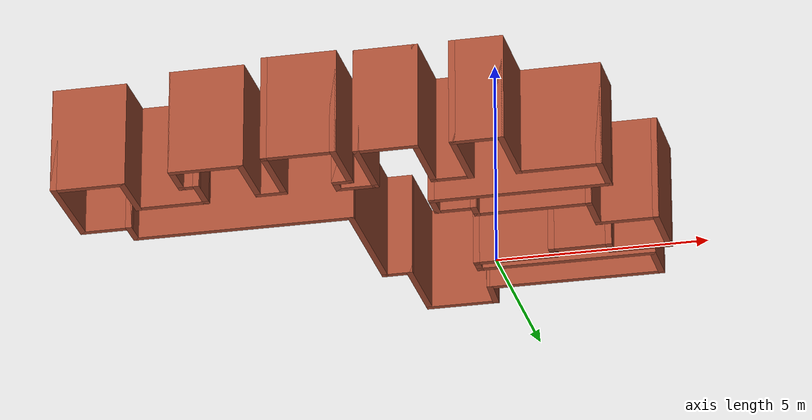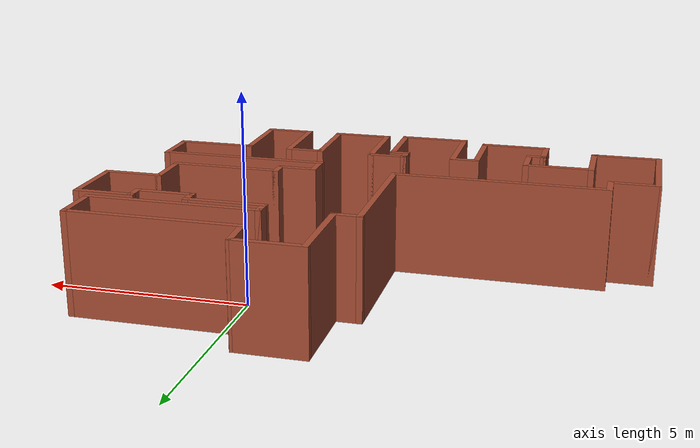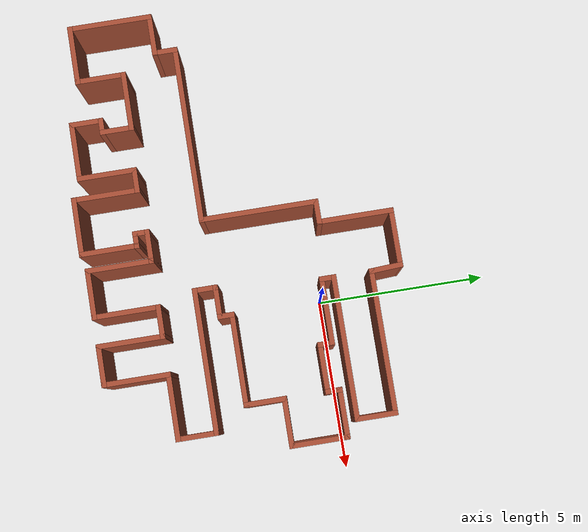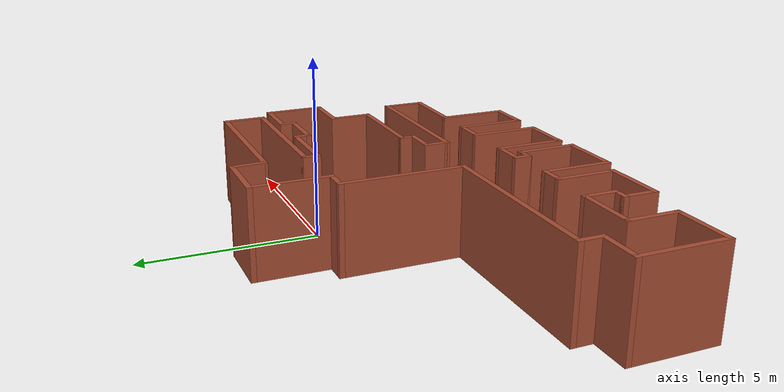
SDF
<?xml version='1.0'?>
<sdf version='1.6'>
  <model name='map_65'>
    <pose frame=''>-2.43226 -2.10203 0 0 -0 0</pose>
    <link name='Wall_0'>
      <collision name='Wall_0_Collision'>
        <geometry>
          <box>
            <size>1.75 0.15 2.5</size>
          </box>
        </geometry>
        <pose frame=''>0 0 1.25 0 -0 0</pose>
      </collision>
      <visual name='Wall_0_Visual'>
        <pose frame=''>0 0 1.25 0 -0 0</pose>
        <geometry>
          <box>
            <size>1.75 0.15 2.5</size>
          </box>
        </geometry>
        <material>
          <script>
            <uri>file://media/materials/scripts/gazebo.material</uri>
            <name>Gazebo/Bricks</name>
          </script>
          <ambient>1 1 1 1</ambient>
        </material>
        <meta>
          <layer>0</layer>
        </meta>
      </visual>
      <pose frame=''>1.1 4.49786 0 0 -0 3.14159</pose>
    </link>
    <link name='Wall_1'>
      <collision name='Wall_1_Collision'>
        <geometry>
          <box>
            <size>2.25 0.15 2.5</size>
          </box>
        </geometry>
        <pose frame=''>0 0 1.25 0 -0 0</pose>
      </collision>
      <visual name='Wall_1_Visual'>
        <pose frame=''>0 0 1.25 0 -0 0</pose>
        <geometry>
          <box>
            <size>2.25 0.15 2.5</size>
          </box>
        </geometry>
        <material>
          <script>
            <uri>file://media/materials/scripts/gazebo.material</uri>
            <name>Gazebo/Bricks</name>
          </script>
          <ambient>1 1 1 1</ambient>
        </material>
        <meta>
          <layer>0</layer>
        </meta>
      </visual>
      <pose frame=''>0.3 3.44786 0 0 -0 -1.5708</pose>
    </link>
    <link name='Wall_10'>
      <collision name='Wall_10_Collision'>
        <geometry>
          <box>
            <size>1.75 0.15 2.5</size>
          </box>
        </geometry>
        <pose frame=''>0 0 1.25 0 -0 0</pose>
      </collision>
      <visual name='Wall_10_Visual'>
        <pose frame=''>0 0 1.25 0 -0 0</pose>
        <geometry>
          <box>
            <size>1.75 0.15 2.5</size>
          </box>
        </geometry>
        <material>
          <script>
            <uri>file://media/materials/scripts/gazebo.material</uri>
            <name>Gazebo/Bricks</name>
          </script>
          <ambient>1 1 1 1</ambient>
        </material>
        <meta>
          <layer>0</layer>
        </meta>
      </visual>
      <pose frame=''>-5.7 -3.90214 0 0 -0 0</pose>
    </link>
    <link name='Wall_11'>
      <collision name='Wall_11_Collision'>
        <geometry>
          <box>
            <size>1.5 0.15 2.5</size>
          </box>
        </geometry>
        <pose frame=''>0 0 1.25 0 -0 0</pose>
      </collision>
      <visual name='Wall_11_Visual'>
        <pose frame=''>0 0 1.25 0 -0 0</pose>
        <geometry>
          <box>
            <size>1.5 0.15 2.5</size>
          </box>
        </geometry>
        <material>
          <script>
            <uri>file://media/materials/scripts/gazebo.material</uri>
            <name>Gazebo/Bricks</name>
          </script>
          <ambient>1 1 1 1</ambient>
        </material>
        <meta>
          <layer>0</layer>
        </meta>
      </visual>
      <pose frame=''>-4.9 -3.22714 0 0 -0 1.5708</pose>
    </link>
    <link name='Wall_12'>
      <collision name='Wall_12_Collision'>
        <geometry>
          <box>
            <size>1.75 0.15 2.5</size>
          </box>
        </geometry>
        <pose frame=''>0 0 1.25 0 -0 0</pose>
      </collision>
      <visual name='Wall_12_Visual'>
        <pose frame=''>0 0 1.25 0 -0 0</pose>
        <geometry>
          <box>
            <size>1.75 0.15 2.5</size>
          </box>
        </geometry>
        <material>
          <script>
            <uri>file://media/materials/scripts/gazebo.material</uri>
            <name>Gazebo/Bricks</name>
          </script>
          <ambient>1 1 1 1</ambient>
        </material>
        <meta>
          <layer>0</layer>
        </meta>
      </visual>
      <pose frame=''>-4.1 -2.55214 0 0 -0 0</pose>
    </link>
    <link name='Wall_13'>
      <collision name='Wall_13_Collision'>
        <geometry>
          <box>
            <size>1 0.15 2.5</size>
          </box>
        </geometry>
        <pose frame=''>0 0 1.25 0 -0 0</pose>
      </collision>
      <visual name='Wall_13_Visual'>
        <pose frame=''>0 0 1.25 0 -0 0</pose>
        <geometry>
          <box>
            <size>1 0.15 2.5</size>
          </box>
        </geometry>
        <material>
          <script>
            <uri>file://media/materials/scripts/gazebo.material</uri>
            <name>Gazebo/Bricks</name>
          </script>
          <ambient>1 1 1 1</ambient>
        </material>
        <meta>
          <layer>0</layer>
        </meta>
      </visual>
      <pose frame=''>-3.3 -2.97714 0 0 -0 -1.5708</pose>
    </link>
    <link name='Wall_14'>
      <collision name='Wall_14_Collision'>
        <geometry>
          <box>
            <size>0.5 0.15 2.5</size>
          </box>
        </geometry>
        <pose frame=''>0 0 1.25 0 -0 0</pose>
      </collision>
      <visual name='Wall_14_Visual'>
        <pose frame=''>0 0 1.25 0 -0 0</pose>
        <geometry>
          <box>
            <size>0.5 0.15 2.5</size>
          </box>
        </geometry>
        <material>
          <script>
            <uri>file://media/materials/scripts/gazebo.material</uri>
            <name>Gazebo/Bricks</name>
          </script>
          <ambient>1 1 1 1</ambient>
        </material>
        <meta>
          <layer>0</layer>
        </meta>
      </visual>
      <pose frame=''>-3.475 -3.40214 0 0 -0 3.14159</pose>
    </link>
    <link name='Wall_15'>
      <collision name='Wall_15_Collision'>
        <geometry>
          <box>
            <size>1 0.15 2.5</size>
          </box>
        </geometry>
        <pose frame=''>0 0 1.25 0 -0 0</pose>
      </collision>
      <visual name='Wall_15_Visual'>
        <pose frame=''>0 0 1.25 0 -0 0</pose>
        <geometry>
          <box>
            <size>1 0.15 2.5</size>
          </box>
        </geometry>
        <material>
          <script>
            <uri>file://media/materials/scripts/gazebo.material</uri>
            <name>Gazebo/Bricks</name>
          </script>
          <ambient>1 1 1 1</ambient>
        </material>
        <meta>
          <layer>0</layer>
        </meta>
      </visual>
      <pose frame=''>-3.65 -3.82714 0 0 -0 -1.5708</pose>
    </link>
    <link name='Wall_16'>
      <collision name='Wall_16_Collision'>
        <geometry>
          <box>
            <size>1.75 0.15 2.5</size>
          </box>
        </geometry>
        <pose frame=''>0 0 1.25 0 -0 0</pose>
      </collision>
      <visual name='Wall_16_Visual'>
        <pose frame=''>0 0 1.25 0 -0 0</pose>
        <geometry>
          <box>
            <size>1.75 0.15 2.5</size>
          </box>
        </geometry>
        <material>
          <script>
            <uri>file://media/materials/scripts/gazebo.material</uri>
            <name>Gazebo/Bricks</name>
          </script>
          <ambient>1 1 1 1</ambient>
        </material>
        <meta>
          <layer>0</layer>
        </meta>
      </visual>
      <pose frame=''>-2.85 -4.25214 0 0 -0 0</pose>
    </link>
    <link name='Wall_17'>
      <collision name='Wall_17_Collision'>
        <geometry>
          <box>
            <size>1.75 0.15 2.5</size>
          </box>
        </geometry>
        <pose frame=''>0 0 1.25 0 -0 0</pose>
      </collision>
      <visual name='Wall_17_Visual'>
        <pose frame=''>0 0 1.25 0 -0 0</pose>
        <geometry>
          <box>
            <size>1.75 0.15 2.5</size>
          </box>
        </geometry>
        <material>
          <script>
            <uri>file://media/materials/scripts/gazebo.material</uri>
            <name>Gazebo/Bricks</name>
          </script>
          <ambient>1 1 1 1</ambient>
        </material>
        <meta>
          <layer>0</layer>
        </meta>
      </visual>
      <pose frame=''>-2.05 -3.45214 0 0 -0 1.5708</pose>
    </link>
    <link name='Wall_18'>
      <collision name='Wall_18_Collision'>
        <geometry>
          <box>
            <size>0.75 0.15 2.5</size>
          </box>
        </geometry>
        <pose frame=''>0 0 1.25 0 -0 0</pose>
      </collision>
      <visual name='Wall_18_Visual'>
        <pose frame=''>0 0 1.25 0 -0 0</pose>
        <geometry>
          <box>
            <size>0.75 0.15 2.5</size>
          </box>
        </geometry>
        <material>
          <script>
            <uri>file://media/materials/scripts/gazebo.material</uri>
            <name>Gazebo/Bricks</name>
          </script>
          <ambient>1 1 1 1</ambient>
        </material>
        <meta>
          <layer>0</layer>
        </meta>
      </visual>
      <pose frame=''>-1.75 -2.65214 0 0 -0 0</pose>
    </link>
    <link name='Wall_19'>
      <collision name='Wall_19_Collision'>
        <geometry>
          <box>
            <size>2 0.15 2.5</size>
          </box>
        </geometry>
        <pose frame=''>0 0 1.25 0 -0 0</pose>
      </collision>
      <visual name='Wall_19_Visual'>
        <pose frame=''>0 0 1.25 0 -0 0</pose>
        <geometry>
          <box>
            <size>2 0.15 2.5</size>
          </box>
        </geometry>
        <material>
          <script>
            <uri>file://media/materials/scripts/gazebo.material</uri>
            <name>Gazebo/Bricks</name>
          </script>
          <ambient>1 1 1 1</ambient>
        </material>
        <meta>
          <layer>0</layer>
        </meta>
      </visual>
      <pose frame=''>-1.45 -3.57714 0 0 -0 -1.5708</pose>
    </link>
    <link name='Wall_2'>
      <collision name='Wall_2_Collision'>
        <geometry>
          <box>
            <size>0.75 0.15 2.5</size>
          </box>
        </geometry>
        <pose frame=''>0 0 1.25 0 -0 0</pose>
      </collision>
      <visual name='Wall_2_Visual'>
        <pose frame=''>0 0 1.25 0 -0 0</pose>
        <geometry>
          <box>
            <size>0.75 0.15 2.5</size>
          </box>
        </geometry>
        <material>
          <script>
            <uri>file://media/materials/scripts/gazebo.material</uri>
            <name>Gazebo/Bricks</name>
          </script>
          <ambient>1 1 1 1</ambient>
        </material>
        <meta>
          <layer>0</layer>
        </meta>
      </visual>
      <pose frame=''>-0 2.39786 0 0 -0 3.14159</pose>
    </link>
    <link name='Wall_20'>
      <collision name='Wall_20_Collision'>
        <geometry>
          <box>
            <size>1.75 0.15 2.5</size>
          </box>
        </geometry>
        <pose frame=''>0 0 1.25 0 -0 0</pose>
      </collision>
      <visual name='Wall_20_Visual'>
        <pose frame=''>0 0 1.25 0 -0 0</pose>
        <geometry>
          <box>
            <size>1.75 0.15 2.5</size>
          </box>
        </geometry>
        <material>
          <script>
            <uri>file://media/materials/scripts/gazebo.material</uri>
            <name>Gazebo/Bricks</name>
          </script>
          <ambient>1 1 1 1</ambient>
        </material>
        <meta>
          <layer>0</layer>
        </meta>
      </visual>
      <pose frame=''>-0.65 -4.50214 0 0 -0 0</pose>
    </link>
    <link name='Wall_21'>
      <collision name='Wall_21_Collision'>
        <geometry>
          <box>
            <size>1.75 0.15 2.5</size>
          </box>
        </geometry>
        <pose frame=''>0 0 1.25 0 -0 0</pose>
      </collision>
      <visual name='Wall_21_Visual'>
        <pose frame=''>0 0 1.25 0 -0 0</pose>
        <geometry>
          <box>
            <size>1.75 0.15 2.5</size>
          </box>
        </geometry>
        <material>
          <script>
            <uri>file://media/materials/scripts/gazebo.material</uri>
            <name>Gazebo/Bricks</name>
          </script>
          <ambient>1 1 1 1</ambient>
        </material>
        <meta>
          <layer>0</layer>
        </meta>
      </visual>
      <pose frame=''>0.15 -3.70214 0 0 -0 1.5708</pose>
    </link>
    <link name='Wall_22'>
      <collision name='Wall_22_Collision'>
        <geometry>
          <box>
            <size>0.5 0.15 2.5</size>
          </box>
        </geometry>
        <pose frame=''>0 0 1.25 0 -0 0</pose>
      </collision>
      <visual name='Wall_22_Visual'>
        <pose frame=''>0 0 1.25 0 -0 0</pose>
        <geometry>
          <box>
            <size>0.5 0.15 2.5</size>
          </box>
        </geometry>
        <material>
          <script>
            <uri>file://media/materials/scripts/gazebo.material</uri>
            <name>Gazebo/Bricks</name>
          </script>
          <ambient>1 1 1 1</ambient>
        </material>
        <meta>
          <layer>0</layer>
        </meta>
      </visual>
      <pose frame=''>-0.025 -2.90214 0 0 -0 3.14159</pose>
    </link>
    <link name='Wall_23'>
      <collision name='Wall_23_Collision'>
        <geometry>
          <box>
            <size>0.5 0.15 2.5</size>
          </box>
        </geometry>
        <pose frame=''>0 0 1.25 0 -0 0</pose>
      </collision>
      <visual name='Wall_23_Visual'>
        <pose frame=''>0 0 1.25 0 -0 0</pose>
        <geometry>
          <box>
            <size>0.5 0.15 2.5</size>
          </box>
        </geometry>
        <material>
          <script>
            <uri>file://media/materials/scripts/gazebo.material</uri>
            <name>Gazebo/Bricks</name>
          </script>
          <ambient>1 1 1 1</ambient>
        </material>
        <meta>
          <layer>0</layer>
        </meta>
      </visual>
      <pose frame=''>-0.2 -2.72714 0 0 -0 1.5708</pose>
    </link>
    <link name='Wall_24'>
      <collision name='Wall_24_Collision'>
        <geometry>
          <box>
            <size>1 0.15 2.5</size>
          </box>
        </geometry>
        <pose frame=''>0 0 1.25 0 -0 0</pose>
      </collision>
      <visual name='Wall_24_Visual'>
        <pose frame=''>0 0 1.25 0 -0 0</pose>
        <geometry>
          <box>
            <size>1 0.15 2.5</size>
          </box>
        </geometry>
        <material>
          <script>
            <uri>file://media/materials/scripts/gazebo.material</uri>
            <name>Gazebo/Bricks</name>
          </script>
          <ambient>1 1 1 1</ambient>
        </material>
        <meta>
          <layer>0</layer>
        </meta>
      </visual>
      <pose frame=''>0.225 -2.55214 0 0 -0 0</pose>
    </link>
    <link name='Wall_25'>
      <collision name='Wall_25_Collision'>
        <geometry>
          <box>
            <size>2 0.15 2.5</size>
          </box>
        </geometry>
        <pose frame=''>0 0 1.25 0 -0 0</pose>
      </collision>
      <visual name='Wall_25_Visual'>
        <pose frame=''>0 0 1.25 0 -0 0</pose>
        <geometry>
          <box>
            <size>2 0.15 2.5</size>
          </box>
        </geometry>
        <material>
          <script>
            <uri>file://media/materials/scripts/gazebo.material</uri>
            <name>Gazebo/Bricks</name>
          </script>
          <ambient>1 1 1 1</ambient>
        </material>
        <meta>
          <layer>0</layer>
        </meta>
      </visual>
      <pose frame=''>0.65 -3.47714 0 0 -0 -1.5708</pose>
    </link>
    <link name='Wall_26'>
      <collision name='Wall_26_Collision'>
        <geometry>
          <box>
            <size>1.5 0.15 2.5</size>
          </box>
        </geometry>
        <pose frame=''>0 0 1.25 0 -0 0</pose>
      </collision>
      <visual name='Wall_26_Visual'>
        <pose frame=''>0 0 1.25 0 -0 0</pose>
        <geometry>
          <box>
            <size>1.5 0.15 2.5</size>
          </box>
        </geometry>
        <material>
          <script>
            <uri>file://media/materials/scripts/gazebo.material</uri>
            <name>Gazebo/Bricks</name>
          </script>
          <ambient>1 1 1 1</ambient>
        </material>
        <meta>
          <layer>0</layer>
        </meta>
      </visual>
      <pose frame=''>1.325 -4.40214 0 0 -0 0</pose>
    </link>
    <link name='Wall_27'>
      <collision name='Wall_27_Collision'>
        <geometry>
          <box>
            <size>2 0.15 2.5</size>
          </box>
        </geometry>
        <pose frame=''>0 0 1.25 0 -0 0</pose>
      </collision>
      <visual name='Wall_27_Visual'>
        <pose frame=''>0 0 1.25 0 -0 0</pose>
        <geometry>
          <box>
            <size>2 0.15 2.5</size>
          </box>
        </geometry>
        <material>
          <script>
            <uri>file://media/materials/scripts/gazebo.material</uri>
            <name>Gazebo/Bricks</name>
          </script>
          <ambient>1 1 1 1</ambient>
        </material>
        <meta>
          <layer>0</layer>
        </meta>
      </visual>
      <pose frame=''>2 -3.47714 0 0 -0 1.5708</pose>
    </link>
    <link name='Wall_28'>
      <collision name='Wall_28_Collision'>
        <geometry>
          <box>
            <size>1 0.15 2.5</size>
          </box>
        </geometry>
        <pose frame=''>0 0 1.25 0 -0 0</pose>
      </collision>
      <visual name='Wall_28_Visual'>
        <pose frame=''>0 0 1.25 0 -0 0</pose>
        <geometry>
          <box>
            <size>1 0.15 2.5</size>
          </box>
        </geometry>
        <material>
          <script>
            <uri>file://media/materials/scripts/gazebo.material</uri>
            <name>Gazebo/Bricks</name>
          </script>
          <ambient>1 1 1 1</ambient>
        </material>
        <meta>
          <layer>0</layer>
        </meta>
      </visual>
      <pose frame=''>2.425 -2.55214 0 0 -0 0</pose>
    </link>
    <link name='Wall_29'>
      <collision name='Wall_29_Collision'>
        <geometry>
          <box>
            <size>2 0.15 2.5</size>
          </box>
        </geometry>
        <pose frame=''>0 0 1.25 0 -0 0</pose>
      </collision>
      <visual name='Wall_29_Visual'>
        <pose frame=''>0 0 1.25 0 -0 0</pose>
        <geometry>
          <box>
            <size>2 0.15 2.5</size>
          </box>
        </geometry>
        <material>
          <script>
            <uri>file://media/materials/scripts/gazebo.material</uri>
            <name>Gazebo/Bricks</name>
          </script>
          <ambient>1 1 1 1</ambient>
        </material>
        <meta>
          <layer>0</layer>
        </meta>
      </visual>
      <pose frame=''>2.85 -3.47714 0 0 -0 -1.5708</pose>
    </link>
    <link name='Wall_30'>
      <collision name='Wall_30_Collision'>
        <geometry>
          <box>
            <size>1.25 0.15 2.5</size>
          </box>
        </geometry>
        <pose frame=''>0 0 1.25 0 -0 0</pose>
      </collision>
      <visual name='Wall_30_Visual'>
        <pose frame=''>0 0 1.25 0 -0 0</pose>
        <geometry>
          <box>
            <size>1.25 0.15 2.5</size>
          </box>
        </geometry>
        <material>
          <script>
            <uri>file://media/materials/scripts/gazebo.material</uri>
            <name>Gazebo/Bricks</name>
          </script>
          <ambient>1 1 1 1</ambient>
        </material>
        <meta>
          <layer>0</layer>
        </meta>
      </visual>
      <pose frame=''>3.4 -4.40214 0 0 -0 0</pose>
    </link>
    <link name='Wall_31'>
      <collision name='Wall_31_Collision'>
        <geometry>
          <box>
            <size>2 0.15 2.5</size>
          </box>
        </geometry>
        <pose frame=''>0 0 1.25 0 -0 0</pose>
      </collision>
      <visual name='Wall_31_Visual'>
        <pose frame=''>0 0 1.25 0 -0 0</pose>
        <geometry>
          <box>
            <size>2 0.15 2.5</size>
          </box>
        </geometry>
        <material>
          <script>
            <uri>file://media/materials/scripts/gazebo.material</uri>
            <name>Gazebo/Bricks</name>
          </script>
          <ambient>1 1 1 1</ambient>
        </material>
        <meta>
          <layer>0</layer>
        </meta>
      </visual>
      <pose frame=''>3.95 -3.47714 0 0 -0 1.5708</pose>
    </link>
    <link name='Wall_32'>
      <collision name='Wall_32_Collision'>
        <geometry>
          <box>
            <size>2 0.15 2.5</size>
          </box>
        </geometry>
        <pose frame=''>0 0 1.25 0 -0 0</pose>
      </collision>
      <visual name='Wall_32_Visual'>
        <pose frame=''>0 0 1.25 0 -0 0</pose>
        <geometry>
          <box>
            <size>2 0.15 2.5</size>
          </box>
        </geometry>
        <material>
          <script>
            <uri>file://media/materials/scripts/gazebo.material</uri>
            <name>Gazebo/Bricks</name>
          </script>
          <ambient>1 1 1 1</ambient>
        </material>
        <meta>
          <layer>0</layer>
        </meta>
      </visual>
      <pose frame=''>4.875 -2.55214 0 0 -0 0</pose>
    </link>
    <link name='Wall_35'>
      <collision name='Wall_35_Collision'>
        <geometry>
          <box>
            <size>1.25 0.15 2.5</size>
          </box>
        </geometry>
        <pose frame=''>0 0 1.25 0 -0 0</pose>
      </collision>
      <visual name='Wall_35_Visual'>
        <pose frame=''>0 0 1.25 0 -0 0</pose>
        <geometry>
          <box>
            <size>1.25 0.15 2.5</size>
          </box>
        </geometry>
        <material>
          <script>
            <uri>file://media/materials/scripts/gazebo.material</uri>
            <name>Gazebo/Bricks</name>
          </script>
          <ambient>1 1 1 1</ambient>
        </material>
        <meta>
          <layer>0</layer>
        </meta>
      </visual>
      <pose frame=''>5.8 -2.00214 0 0 -0 1.5708</pose>
    </link>
    <link name='Wall_36'>
      <collision name='Wall_36_Collision'>
        <geometry>
          <box>
            <size>4.25 0.15 2.5</size>
          </box>
        </geometry>
        <pose frame=''>0 0 1.25 0 -0 0</pose>
      </collision>
      <visual name='Wall_36_Visual'>
        <pose frame=''>0 0 1.25 0 -0 0</pose>
        <geometry>
          <box>
            <size>4.25 0.15 2.5</size>
          </box>
        </geometry>
        <material>
          <script>
            <uri>file://media/materials/scripts/gazebo.material</uri>
            <name>Gazebo/Bricks</name>
          </script>
          <ambient>1 1 1 1</ambient>
        </material>
        <meta>
          <layer>0</layer>
        </meta>
      </visual>
      <pose frame=''>3.75 -1.45214 0 0 -0 3.14159</pose>
    </link>
    <link name='Wall_37'>
      <collision name='Wall_37_Collision'>
        <geometry>
          <box>
            <size>0.75 0.15 2.5</size>
          </box>
        </geometry>
        <pose frame=''>0 0 1.25 0 -0 0</pose>
      </collision>
      <visual name='Wall_37_Visual'>
        <pose frame=''>0 0 1.25 0 -0 0</pose>
        <geometry>
          <box>
            <size>0.75 0.15 2.5</size>
          </box>
        </geometry>
        <material>
          <script>
            <uri>file://media/materials/scripts/gazebo.material</uri>
            <name>Gazebo/Bricks</name>
          </script>
          <ambient>1 1 1 1</ambient>
        </material>
        <meta>
          <layer>0</layer>
        </meta>
      </visual>
      <pose frame=''>1.7 -1.15214 0 0 -0 1.5708</pose>
    </link>
    <link name='Wall_38'>
      <collision name='Wall_38_Collision'>
        <geometry>
          <box>
            <size>1 0.15 2.5</size>
          </box>
        </geometry>
        <pose frame=''>0 0 1.25 0 -0 0</pose>
      </collision>
      <visual name='Wall_38_Visual'>
        <pose frame=''>0 0 1.25 0 -0 0</pose>
        <geometry>
          <box>
            <size>1 0.15 2.5</size>
          </box>
        </geometry>
        <material>
          <script>
            <uri>file://media/materials/scripts/gazebo.material</uri>
            <name>Gazebo/Bricks</name>
          </script>
          <ambient>1 1 1 1</ambient>
        </material>
        <meta>
          <layer>0</layer>
        </meta>
      </visual>
      <pose frame=''>2.125 -0.852137 0 0 -0 0</pose>
    </link>
    <link name='Wall_39'>
      <collision name='Wall_39_Collision'>
        <geometry>
          <box>
            <size>0.5 0.15 2.5</size>
          </box>
        </geometry>
        <pose frame=''>0 0 1.25 0 -0 0</pose>
      </collision>
      <visual name='Wall_39_Visual'>
        <pose frame=''>0 0 1.25 0 -0 0</pose>
        <geometry>
          <box>
            <size>0.5 0.15 2.5</size>
          </box>
        </geometry>
        <material>
          <script>
            <uri>file://media/materials/scripts/gazebo.material</uri>
            <name>Gazebo/Bricks</name>
          </script>
          <ambient>1 1 1 1</ambient>
        </material>
        <meta>
          <layer>0</layer>
        </meta>
      </visual>
      <pose frame=''>2.55 -0.677137 0 0 -0 1.5708</pose>
    </link>
    <link name='Wall_40'>
      <collision name='Wall_40_Collision'>
        <geometry>
          <box>
            <size>2.75 0.15 2.5</size>
          </box>
        </geometry>
        <pose frame=''>0 0 1.25 0 -0 0</pose>
      </collision>
      <visual name='Wall_40_Visual'>
        <pose frame=''>0 0 1.25 0 -0 0</pose>
        <geometry>
          <box>
            <size>2.75 0.15 2.5</size>
          </box>
        </geometry>
        <material>
          <script>
            <uri>file://media/materials/scripts/gazebo.material</uri>
            <name>Gazebo/Bricks</name>
          </script>
          <ambient>1 1 1 1</ambient>
        </material>
        <meta>
          <layer>0</layer>
        </meta>
      </visual>
      <pose frame=''>3.85 -0.502137 0 0 -0 0</pose>
    </link>
    <link name='Wall_41'>
      <collision name='Wall_41_Collision'>
        <geometry>
          <box>
            <size>1.25 0.15 2.5</size>
          </box>
        </geometry>
        <pose frame=''>0 0 1.25 0 -0 0</pose>
      </collision>
      <visual name='Wall_41_Visual'>
        <pose frame=''>0 0 1.25 0 -0 0</pose>
        <geometry>
          <box>
            <size>1.25 0.15 2.5</size>
          </box>
        </geometry>
        <material>
          <script>
            <uri>file://media/materials/scripts/gazebo.material</uri>
            <name>Gazebo/Bricks</name>
          </script>
          <ambient>1 1 1 1</ambient>
        </material>
        <meta>
          <layer>0</layer>
        </meta>
      </visual>
      <pose frame=''>5.15 0.047863 0 0 -0 1.5708</pose>
    </link>
    <link name='Wall_42'>
      <collision name='Wall_42_Collision'>
        <geometry>
          <box>
            <size>1.5 0.15 2.5</size>
          </box>
        </geometry>
        <pose frame=''>0 0 1.25 0 -0 0</pose>
      </collision>
      <visual name='Wall_42_Visual'>
        <pose frame=''>0 0 1.25 0 -0 0</pose>
        <geometry>
          <box>
            <size>1.5 0.15 2.5</size>
          </box>
        </geometry>
        <material>
          <script>
            <uri>file://media/materials/scripts/gazebo.material</uri>
            <name>Gazebo/Bricks</name>
          </script>
          <ambient>1 1 1 1</ambient>
        </material>
        <meta>
          <layer>0</layer>
        </meta>
      </visual>
      <pose frame=''>5.825 0.597863 0 0 -0 0</pose>
    </link>
    <link name='Wall_43'>
      <collision name='Wall_43_Collision'>
        <geometry>
          <box>
            <size>1.75 0.15 2.5</size>
          </box>
        </geometry>
        <pose frame=''>0 0 1.25 0 -0 0</pose>
      </collision>
      <visual name='Wall_43_Visual'>
        <pose frame=''>0 0 1.25 0 -0 0</pose>
        <geometry>
          <box>
            <size>1.75 0.15 2.5</size>
          </box>
        </geometry>
        <material>
          <script>
            <uri>file://media/materials/scripts/gazebo.material</uri>
            <name>Gazebo/Bricks</name>
          </script>
          <ambient>1 1 1 1</ambient>
        </material>
        <meta>
          <layer>0</layer>
        </meta>
      </visual>
      <pose frame=''>6.5 1.39786 0 0 -0 1.5708</pose>
    </link>
    <link name='Wall_44'>
      <collision name='Wall_44_Collision'>
        <geometry>
          <box>
            <size>1.5 0.15 2.5</size>
          </box>
        </geometry>
        <pose frame=''>0 0 1.25 0 -0 0</pose>
      </collision>
      <visual name='Wall_44_Visual'>
        <pose frame=''>0 0 1.25 0 -0 0</pose>
        <geometry>
          <box>
            <size>1.5 0.15 2.5</size>
          </box>
        </geometry>
        <material>
          <script>
            <uri>file://media/materials/scripts/gazebo.material</uri>
            <name>Gazebo/Bricks</name>
          </script>
          <ambient>1 1 1 1</ambient>
        </material>
        <meta>
          <layer>0</layer>
        </meta>
      </visual>
      <pose frame=''>5.825 2.19786 0 0 -0 3.14159</pose>
    </link>
    <link name='Wall_45'>
      <collision name='Wall_45_Collision'>
        <geometry>
          <box>
            <size>0.5 0.15 2.5</size>
          </box>
        </geometry>
        <pose frame=''>0 0 1.25 0 -0 0</pose>
      </collision>
      <visual name='Wall_45_Visual'>
        <pose frame=''>0 0 1.25 0 -0 0</pose>
        <geometry>
          <box>
            <size>0.5 0.15 2.5</size>
          </box>
        </geometry>
        <material>
          <script>
            <uri>file://media/materials/scripts/gazebo.material</uri>
            <name>Gazebo/Bricks</name>
          </script>
          <ambient>1 1 1 1</ambient>
        </material>
        <meta>
          <layer>0</layer>
        </meta>
      </visual>
      <pose frame=''>5.15 2.02286 0 0 -0 -1.5708</pose>
    </link>
    <link name='Wall_46'>
      <collision name='Wall_46_Collision'>
        <geometry>
          <box>
            <size>1.5 0.15 2.5</size>
          </box>
        </geometry>
        <pose frame=''>0 0 1.25 0 -0 0</pose>
      </collision>
      <visual name='Wall_46_Visual'>
        <pose frame=''>0 0 1.25 0 -0 0</pose>
        <geometry>
          <box>
            <size>1.5 0.15 2.5</size>
          </box>
        </geometry>
        <material>
          <script>
            <uri>file://media/materials/scripts/gazebo.material</uri>
            <name>Gazebo/Bricks</name>
          </script>
          <ambient>1 1 1 1</ambient>
        </material>
        <meta>
          <layer>0</layer>
        </meta>
      </visual>
      <pose frame=''>4.475 1.84786 0 0 -0 3.14159</pose>
    </link>
    <link name='Wall_47'>
      <collision name='Wall_47_Collision'>
        <geometry>
          <box>
            <size>0.5 0.15 2.5</size>
          </box>
        </geometry>
        <pose frame=''>0 0 1.25 0 -0 0</pose>
      </collision>
      <visual name='Wall_47_Visual'>
        <pose frame=''>0 0 1.25 0 -0 0</pose>
        <geometry>
          <box>
            <size>0.5 0.15 2.5</size>
          </box>
        </geometry>
        <material>
          <script>
            <uri>file://media/materials/scripts/gazebo.material</uri>
            <name>Gazebo/Bricks</name>
          </script>
          <ambient>1 1 1 1</ambient>
        </material>
        <meta>
          <layer>0</layer>
        </meta>
      </visual>
      <pose frame=''>3.8 2.02286 0 0 -0 1.5708</pose>
    </link>
    <link name='Wall_48'>
      <collision name='Wall_48_Collision'>
        <geometry>
          <box>
            <size>2 0.15 2.5</size>
          </box>
        </geometry>
        <pose frame=''>0 0 1.25 0 -0 0</pose>
      </collision>
      <visual name='Wall_48_Visual'>
        <pose frame=''>0 0 1.25 0 -0 0</pose>
        <geometry>
          <box>
            <size>2 0.15 2.5</size>
          </box>
        </geometry>
        <material>
          <script>
            <uri>file://media/materials/scripts/gazebo.material</uri>
            <name>Gazebo/Bricks</name>
          </script>
          <ambient>1 1 1 1</ambient>
        </material>
        <meta>
          <layer>0</layer>
        </meta>
      </visual>
      <pose frame=''>2.875 2.19786 0 0 -0 3.14159</pose>
    </link>
    <link name='Wall_49'>
      <collision name='Wall_49_Collision'>
        <geometry>
          <box>
            <size>0.5 0.15 2.5</size>
          </box>
        </geometry>
        <pose frame=''>0 0 1.25 0 -0 0</pose>
      </collision>
      <visual name='Wall_49_Visual'>
        <pose frame=''>0 0 1.25 0 -0 0</pose>
        <geometry>
          <box>
            <size>0.5 0.15 2.5</size>
          </box>
        </geometry>
        <material>
          <script>
            <uri>file://media/materials/scripts/gazebo.material</uri>
            <name>Gazebo/Bricks</name>
          </script>
          <ambient>1 1 1 1</ambient>
        </material>
        <meta>
          <layer>0</layer>
        </meta>
      </visual>
      <pose frame=''>1.95 2.37286 0 0 -0 1.5708</pose>
    </link>
    <link name='Wall_5'>
      <collision name='Wall_5_Collision'>
        <geometry>
          <box>
            <size>3.5 0.15 2.5</size>
          </box>
        </geometry>
        <pose frame=''>0 0 1.25 0 -0 0</pose>
      </collision>
      <visual name='Wall_5_Visual'>
        <pose frame=''>0 0 1.25 0 -0 0</pose>
        <geometry>
          <box>
            <size>3.5 0.15 2.5</size>
          </box>
        </geometry>
        <material>
          <script>
            <uri>file://media/materials/scripts/gazebo.material</uri>
            <name>Gazebo/Bricks</name>
          </script>
          <ambient>1 1 1 1</ambient>
        </material>
        <meta>
          <layer>0</layer>
        </meta>
      </visual>
      <pose frame=''>-0.3 0.722863 0 0 -0 -1.5708</pose>
    </link>
    <link name='Wall_50'>
      <collision name='Wall_50_Collision'>
        <geometry>
          <box>
            <size>4.25 0.15 2.5</size>
          </box>
        </geometry>
        <pose frame=''>0 0 1.25 0 -0 0</pose>
      </collision>
      <visual name='Wall_50_Visual'>
        <pose frame=''>0 0 1.25 0 -0 0</pose>
        <geometry>
          <box>
            <size>4.25 0.15 2.5</size>
          </box>
        </geometry>
        <material>
          <script>
            <uri>file://media/materials/scripts/gazebo.material</uri>
            <name>Gazebo/Bricks</name>
          </script>
          <ambient>1 1 1 1</ambient>
        </material>
        <meta>
          <layer>0</layer>
        </meta>
      </visual>
      <pose frame=''>4 2.54786 0 0 -0 0</pose>
    </link>
    <link name='Wall_51'>
      <collision name='Wall_51_Collision'>
        <geometry>
          <box>
            <size>1.25 0.15 2.5</size>
          </box>
        </geometry>
        <pose frame=''>0 0 1.25 0 -0 0</pose>
      </collision>
      <visual name='Wall_51_Visual'>
        <pose frame=''>0 0 1.25 0 -0 0</pose>
        <geometry>
          <box>
            <size>1.25 0.15 2.5</size>
          </box>
        </geometry>
        <material>
          <script>
            <uri>file://media/materials/scripts/gazebo.material</uri>
            <name>Gazebo/Bricks</name>
          </script>
          <ambient>1 1 1 1</ambient>
        </material>
        <meta>
          <layer>0</layer>
        </meta>
      </visual>
      <pose frame=''>6.05 3.09786 0 0 -0 1.5708</pose>
    </link>
    <link name='Wall_52'>
      <collision name='Wall_52_Collision'>
        <geometry>
          <box>
            <size>4.25 0.15 2.5</size>
          </box>
        </geometry>
        <pose frame=''>0 0 1.25 0 -0 0</pose>
      </collision>
      <visual name='Wall_52_Visual'>
        <pose frame=''>0 0 1.25 0 -0 0</pose>
        <geometry>
          <box>
            <size>4.25 0.15 2.5</size>
          </box>
        </geometry>
        <material>
          <script>
            <uri>file://media/materials/scripts/gazebo.material</uri>
            <name>Gazebo/Bricks</name>
          </script>
          <ambient>1 1 1 1</ambient>
        </material>
        <meta>
          <layer>0</layer>
        </meta>
      </visual>
      <pose frame=''>4 3.64786 0 0 -0 3.14159</pose>
    </link>
    <link name='Wall_53'>
      <collision name='Wall_53_Collision'>
        <geometry>
          <box>
            <size>1.00147 0.15 2.5</size>
          </box>
        </geometry>
        <pose frame=''>0 0 1.25 0 -0 0</pose>
      </collision>
      <visual name='Wall_53_Visual'>
        <pose frame=''>0 0 1.25 0 -0 0</pose>
        <geometry>
          <box>
            <size>1.00147 0.15 2.5</size>
          </box>
        </geometry>
        <material>
          <script>
            <uri>file://media/materials/scripts/gazebo.material</uri>
            <name>Gazebo/Bricks</name>
          </script>
          <ambient>1 1 1 1</ambient>
        </material>
        <meta>
          <layer>0</layer>
        </meta>
      </visual>
      <pose frame=''>1.925 4.07286 0 0 -0 1.62955</pose>
    </link>
    <link name='Wall_6'>
      <collision name='Wall_6_Collision'>
        <geometry>
          <box>
            <size>5.25 0.15 2.5</size>
          </box>
        </geometry>
        <pose frame=''>0 0 1.25 0 -0 0</pose>
      </collision>
      <visual name='Wall_6_Visual'>
        <pose frame=''>0 0 1.25 0 -0 0</pose>
        <geometry>
          <box>
            <size>5.25 0.15 2.5</size>
          </box>
        </geometry>
        <material>
          <script>
            <uri>file://media/materials/scripts/gazebo.material</uri>
            <name>Gazebo/Bricks</name>
          </script>
          <ambient>1 1 1 1</ambient>
        </material>
        <meta>
          <layer>0</layer>
        </meta>
      </visual>
      <pose frame=''>-2.85 -0.952137 0 0 -0 3.14159</pose>
    </link>
    <link name='Wall_7'>
      <collision name='Wall_7_Collision'>
        <geometry>
          <box>
            <size>0.75 0.15 2.5</size>
          </box>
        </geometry>
        <pose frame=''>0 0 1.25 0 -0 0</pose>
      </collision>
      <visual name='Wall_7_Visual'>
        <pose frame=''>0 0 1.25 0 -0 0</pose>
        <geometry>
          <box>
            <size>0.75 0.15 2.5</size>
          </box>
        </geometry>
        <material>
          <script>
            <uri>file://media/materials/scripts/gazebo.material</uri>
            <name>Gazebo/Bricks</name>
          </script>
          <ambient>1 1 1 1</ambient>
        </material>
        <meta>
          <layer>0</layer>
        </meta>
      </visual>
      <pose frame=''>-5.4 -1.25214 0 0 -0 -1.5708</pose>
    </link>
    <link name='Wall_8'>
      <collision name='Wall_8_Collision'>
        <geometry>
          <box>
            <size>1.25 0.15 2.5</size>
          </box>
        </geometry>
        <pose frame=''>0 0 1.25 0 -0 0</pose>
      </collision>
      <visual name='Wall_8_Visual'>
        <pose frame=''>0 0 1.25 0 -0 0</pose>
        <geometry>
          <box>
            <size>1.25 0.15 2.5</size>
          </box>
        </geometry>
        <material>
          <script>
            <uri>file://media/materials/scripts/gazebo.material</uri>
            <name>Gazebo/Bricks</name>
          </script>
          <ambient>1 1 1 1</ambient>
        </material>
        <meta>
          <layer>0</layer>
        </meta>
      </visual>
      <pose frame=''>-5.95 -1.55214 0 0 -0 3.14159</pose>
    </link>
    <link name='Wall_9'>
      <collision name='Wall_9_Collision'>
        <geometry>
          <box>
            <size>2.5 0.15 2.5</size>
          </box>
        </geometry>
        <pose frame=''>0 0 1.25 0 -0 0</pose>
      </collision>
      <visual name='Wall_9_Visual'>
        <pose frame=''>0 0 1.25 0 -0 0</pose>
        <geometry>
          <box>
            <size>2.5 0.15 2.5</size>
          </box>
        </geometry>
        <material>
          <script>
            <uri>file://media/materials/scripts/gazebo.material</uri>
            <name>Gazebo/Bricks</name>
          </script>
          <ambient>1 1 1 1</ambient>
        </material>
        <meta>
          <layer>0</layer>
        </meta>
      </visual>
      <pose frame=''>-6.5 -2.72714 0 0 -0 -1.5708</pose>
    </link>
    <static>1</static>
  </model>
</sdf>
